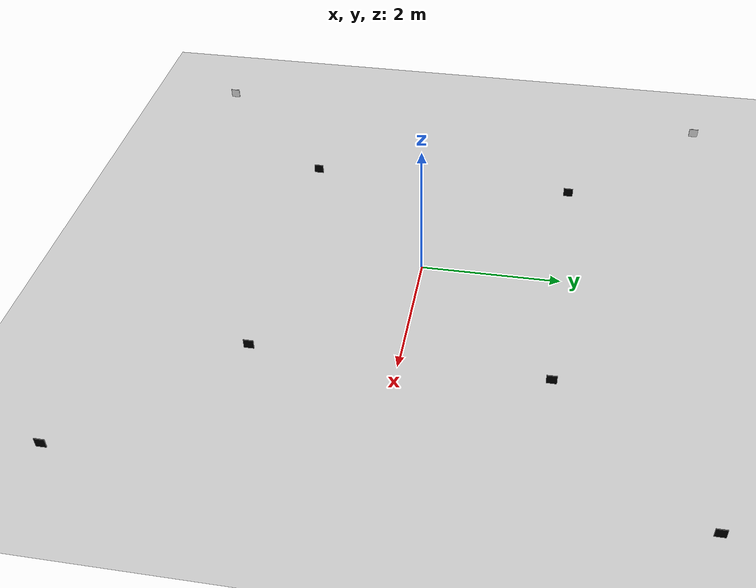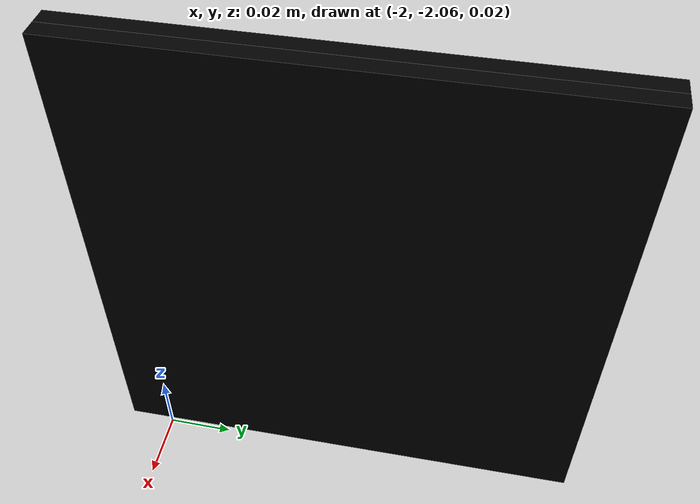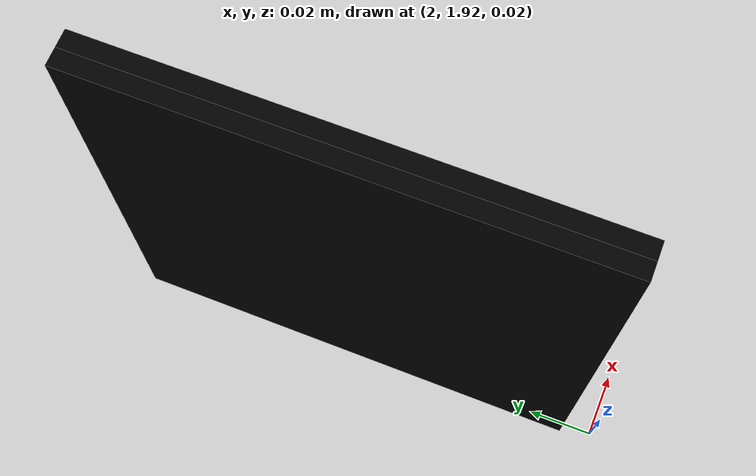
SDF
<sdf version="1.6">
 <world name="default">
  <light name="sun" type="directional">
   <pose>0 0 10 0 -0 0</pose>
   <diffuse>0.8 0.8 0.8 1</diffuse>
   <specular>0.2 0.2 0.2 1</specular>
   <attenuation>
    <range>1000</range>
    <constant>0.9</constant>
    <linear>0.01</linear>
    <quadratic>0.001</quadratic>
   </attenuation>
   <direction>-0.5 0.1 -0.9</direction>
  </light>
  <model name="ground_plane">
   <static>1</static>
   <link name="link">
    <collision name="collision">
     <geometry><plane><normal>0 0 1</normal><size>100 100</size></plane></geometry>
     <surface>
      <contact><collide_bitmask>65535</collide_bitmask></contact>
      <friction><ode><mu>100</mu><mu2>50</mu2></ode></friction>
     </surface>
    </collision>
    <visual name="visual">
     <cast_shadows>0</cast_shadows>
     <geometry><plane><normal>0 0 1</normal><size>100 100</size></plane></geometry>
     <material>
      <script><uri>file://media/materials/scripts/gazebo.material</uri><name>Gazebo/Grey</name></script>
     </material>
    </visual>
   </link>
  </model>
  <gravity>0 0 -9.8</gravity>
  <magnetic_field>6e-06 2.3e-05 -4.2e-05</magnetic_field>
  <atmosphere type="adiabatic"/>
  <physics name="default_physics" default="0" type="ode">
   <max_step_size>0.001</max_step_size>
   <real_time_factor>1</real_time_factor>
   <real_time_update_rate>1000</real_time_update_rate>
  </physics>
  <scene><ambient>0.4 0.4 0.4 1</ambient><background>0.7 0.7 0.7 1</background><shadows>1</shadows></scene>
  <audio><device>default</device></audio>
  <spherical_coordinates>
   <surface_model>EARTH_WGS84</surface_model>
   <latitude_deg>0</latitude_deg>
   <longitude_deg>0</longitude_deg>
   <elevation>0</elevation>
   <heading_deg>0</heading_deg>
  </spherical_coordinates>
  <model name="aruco_plain_0">
   <link name="robot_link">
    <inertial>
     <mass>1</mass>
     <inertia><ixx>1</ixx><ixy>0</ixy><ixz>0</ixz><iyy>1</iyy><iyz>0</iyz><izz>1</izz></inertia>
    </inertial>
    <visual name="front_visual">
     <pose>0 0 0.0025 0 -0 0</pose>
     <geometry><box><size>0.14 0.14 0.005</size></box></geometry>
     <material>
      <lighting>1</lighting>
      <script>
       <uri>model://aruco_plain_0/materials/scripts</uri>
       <uri>model://aruco_plain_0/materials/textures</uri>
       <name>Aruco/Id0</name>
      </script>
      <shader type="vertex"><normal_map>__default__</normal_map></shader>
      <ambient>0 0 0 1</ambient>
      <diffuse>0 0 0 1</diffuse>
      <specular>0 0 0 0</specular>
      <emissive>1 1 1 1</emissive>
     </material>
    </visual>
    <visual name="rear_visual">
     <pose>0 0 -0.0025 0 -0 0</pose>
     <geometry><box><size>0.14 0.14 0.005</size></box></geometry>
     <material>
      <shader type="vertex"><normal_map>__default__</normal_map></shader>
      <script><name>ModelPreview_1::robot_link::rear_visual_MATERIAL_</name><uri>__default__</uri></script>
      <ambient>0 0 0 1</ambient>
      <diffuse>0 0 0 1</diffuse>
      <specular>0 0 0 1</specular>
      <emissive>0 0 0 1</emissive>
     </material>
    </visual>
   </link>
   <static>1</static>
   <pose>2 2 0.1 0 -1.57 0</pose>
  </model>
  <model name="aruco_plain_1">
   <link name="robot_link">
    <inertial>
     <mass>1</mass>
     <inertia><ixx>1</ixx><ixy>0</ixy><ixz>0</ixz><iyy>1</iyy><iyz>0</iyz><izz>1</izz></inertia>
    </inertial>
    <visual name="front_visual">
     <pose>0 0 0.0025 0 -0 0</pose>
     <geometry><box><size>0.14 0.14 0.005</size></box></geometry>
     <material>
      <lighting>1</lighting>
      <script>
       <uri>model://aruco_plain_1/materials/scripts</uri>
       <uri>model://aruco_plain_1/materials/textures</uri>
       <name>Aruco/Id1</name>
      </script>
      <shader type="vertex"><normal_map>__default__</normal_map></shader>
      <ambient>0 0 0 1</ambient>
      <diffuse>0 0 0 1</diffuse>
      <specular>0 0 0 0</specular>
      <emissive>1 1 1 1</emissive>
     </material>
    </visual>
    <visual name="rear_visual">
     <pose>0 0 -0.0025 0 -0 0</pose>
     <geometry><box><size>0.14 0.14 0.005</size></box></geometry>
     <material>
      <shader type="vertex"><normal_map>__default__</normal_map></shader>
      <script><name>ModelPreview_1::robot_link::rear_visual_MATERIAL_</name><uri>__default__</uri></script>
      <ambient>0 0 0 1</ambient>
      <diffuse>0 0 0 1</diffuse>
      <specular>0 0 0 1</specular>
      <emissive>0 0 0 1</emissive>
     </material>
    </visual>
   </link>
   <static>1</static>
   <pose>2 -2 0.1 0 -1.57 0</pose>
  </model>
  <model name="aruco_plain_2">
   <link name="robot_link">
    <inertial>
     <mass>1</mass>
     <inertia><ixx>1</ixx><ixy>0</ixy><ixz>0</ixz><iyy>1</iyy><iyz>0</iyz><izz>1</izz></inertia>
    </inertial>
    <visual name="front_visual">
     <pose>0 0 0.0025 0 -0 0</pose>
     <geometry><box><size>0.14 0.14 0.005</size></box></geometry>
     <material>
      <lighting>1</lighting>
      <script>
       <uri>model://aruco_plain_2/materials/scripts</uri>
       <uri>model://aruco_plain_2/materials/textures</uri>
       <name>Aruco/Id2</name>
      </script>
      <shader type="vertex"><normal_map>__default__</normal_map></shader>
      <ambient>0 0 0 1</ambient>
      <diffuse>0 0 0 1</diffuse>
      <specular>0 0 0 0</specular>
      <emissive>1 1 1 1</emissive>
     </material>
    </visual>
    <visual name="rear_visual">
     <pose>0 0 -0.0025 0 -0 0</pose>
     <geometry><box><size>0.14 0.14 0.005</size></box></geometry>
     <material>
      <shader type="vertex"><normal_map>__default__</normal_map></shader>
      <script><name>ModelPreview_1::robot_link::rear_visual_MATERIAL_</name><uri>__default__</uri></script>
      <ambient>0 0 0 1</ambient>
      <diffuse>0 0 0 1</diffuse>
      <specular>0 0 0 1</specular>
      <emissive>0 0 0 1</emissive>
     </material>
    </visual>
   </link>
   <static>1</static>
   <pose>-2 -2 0.1 0 -1.57 -3.14159</pose>
  </model>
  <model name="aruco_plain_3">
   <link name="robot_link">
    <inertial>
     <mass>1</mass>
     <inertia><ixx>1</ixx><ixy>0</ixy><ixz>0</ixz><iyy>1</iyy><iyz>0</iyz><izz>1</izz></inertia>
    </inertial>
    <visual name="front_visual">
     <pose>0 0 0.0025 0 -0 0</pose>
     <geometry><box><size>0.14 0.14 0.005</size></box></geometry>
     <material>
      <lighting>1</lighting>
      <script>
       <uri>model://aruco_plain_3/materials/scripts</uri>
       <uri>model://aruco_plain_3/materials/textures</uri>
       <name>Aruco/Id3</name>
      </script>
      <shader type="vertex"><normal_map>__default__</normal_map></shader>
      <ambient>0 0 0 1</ambient>
      <diffuse>0 0 0 1</diffuse>
      <specular>0 0 0 0</specular>
      <emissive>1 1 1 1</emissive>
     </material>
    </visual>
    <visual name="rear_visual">
     <pose>0 0 -0.0025 0 -0 0</pose>
     <geometry><box><size>0.14 0.14 0.005</size></box></geometry>
     <material>
      <shader type="vertex"><normal_map>__default__</normal_map></shader>
      <script><name>ModelPreview_1::robot_link::rear_visual_MATERIAL_</name><uri>__default__</uri></script>
      <ambient>0 0 0 1</ambient>
      <diffuse>0 0 0 1</diffuse>
      <specular>0 0 0 1</specular>
      <emissive>0 0 0 1</emissive>
     </material>
    </visual>
   </link>
   <static>1</static>
   <pose>-2 2 0.1 0 -1.57 -3.14159</pose>
  </model>
  <model name="aruco_plain_4">
   <link name="robot_link">
    <inertial>
     <mass>1</mass>
     <inertia><ixx>1</ixx><ixy>0</ixy><ixz>0</ixz><iyy>1</iyy><iyz>0</iyz><izz>1</izz></inertia>
    </inertial>
    <visual name="front_visual">
     <pose>0 0 0.0025 0 -0 0</pose>
     <geometry><box><size>0.14 0.14 0.005</size></box></geometry>
     <material>
      <lighting>1</lighting>
      <script>
       <uri>model://aruco_plain_4/materials/scripts</uri>
       <uri>model://aruco_plain_4/materials/textures</uri>
       <name>Aruco/Id4</name>
      </script>
      <shader type="vertex"><normal_map>__default__</normal_map></shader>
      <ambient>0 0 0 1</ambient>
      <diffuse>0 0 0 1</diffuse>
      <specular>0 0 0 0</specular>
      <emissive>1 1 1 1</emissive>
     </material>
    </visual>
    <visual name="rear_visual">
     <pose>0 0 -0.0025 0 -0 0</pose>
     <geometry><box><size>0.14 0.14 0.005</size></box></geometry>
     <material>
      <shader type="vertex"><normal_map>__default__</normal_map></shader>
      <script><name>ModelPreview_1::robot_link::rear_visual_MATERIAL_</name><uri>__default__</uri></script>
      <ambient>0 0 0 1</ambient>
      <diffuse>0 0 0 1</diffuse>
      <specular>0 0 0 1</specular>
      <emissive>0 0 0 1</emissive>
     </material>
    </visual>
   </link>
   <static>1</static>
   <pose>4 4 0.1 0 -1.57 0</pose>
  </model>
  <model name="aruco_plain_5">
   <link name="robot_link">
    <inertial>
     <mass>1</mass>
     <inertia><ixx>1</ixx><ixy>0</ixy><ixz>0</ixz><iyy>1</iyy><iyz>0</iyz><izz>1</izz></inertia>
    </inertial>
    <visual name="front_visual">
     <pose>0 0 0.0025 0 -0 0</pose>
     <geometry><box><size>0.14 0.14 0.005</size></box></geometry>
     <material>
      <lighting>1</lighting>
      <script>
       <uri>model://aruco_plain_5/materials/scripts</uri>
       <uri>model://aruco_plain_5/materials/textures</uri>
       <name>Aruco/Id5</name>
      </script>
      <shader type="vertex"><normal_map>__default__</normal_map></shader>
      <ambient>0 0 0 1</ambient>
      <diffuse>0 0 0 1</diffuse>
      <specular>0 0 0 0</specular>
      <emissive>1 1 1 1</emissive>
     </material>
    </visual>
    <visual name="rear_visual">
     <pose>0 0 -0.0025 0 -0 0</pose>
     <geometry><box><size>0.14 0.14 0.005</size></box></geometry>
     <material>
      <shader type="vertex"><normal_map>__default__</normal_map></shader>
      <script><name>ModelPreview_1::robot_link::rear_visual_MATERIAL_</name><uri>__default__</uri></script>
      <ambient>0 0 0 1</ambient>
      <diffuse>0 0 0 1</diffuse>
      <specular>0 0 0 1</specular>
      <emissive>0 0 0 1</emissive>
     </material>
    </visual>
   </link>
   <static>1</static>
   <pose>4 -4 0.1 0 -1.57 0</pose>
  </model>
  <model name="aruco_plain_6">
   <link name="robot_link">
    <inertial>
     <mass>1</mass>
     <inertia><ixx>1</ixx><ixy>0</ixy><ixz>0</ixz><iyy>1</iyy><iyz>0</iyz><izz>1</izz></inertia>
    </inertial>
    <visual name="front_visual">
     <pose>0 0 0.0025 0 -0 0</pose>
     <geometry><box><size>0.14 0.14 0.005</size></box></geometry>
     <material>
      <script>
       <uri>model://aruco_plain_6/materials/scripts</uri>
       <uri>model://aruco_plain_6/materials/textures</uri>
       <name>Aruco/Id6</name>
      </script>
      <shader type="vertex"><normal_map>__default__</normal_map></shader>
      <ambient>1 1 1 1</ambient>
      <diffuse>1 1 1 1</diffuse>
      <specular>0 0 0 1</specular>
      <emissive>0 0 0 1</emissive>
     </material>
    </visual>
    <visual name="rear_visual">
     <pose>0 0 -0.0025 0 -0 0</pose>
     <geometry><box><size>0.14 0.14 0.005</size></box></geometry>
     <material>
      <shader type="vertex"><normal_map>__default__</normal_map></shader>
      <script><name>ModelPreview_1::robot_link::rear_visual_MATERIAL_</name><uri>__default__</uri></script>
      <ambient>0 0 0 1</ambient>
      <diffuse>0 0 0 1</diffuse>
      <specular>0 0 0 1</specular>
      <emissive>0 0 0 1</emissive>
     </material>
    </visual>
   </link>
   <static>1</static>
   <pose>-4 -4 0.1 0 -1.57 -3.14159</pose>
  </model>
  <model name="aruco_plain_7">
   <link name="robot_link">
    <inertial>
     <mass>1</mass>
     <inertia><ixx>1</ixx><ixy>0</ixy><ixz>0</ixz><iyy>1</iyy><iyz>0</iyz><izz>1</izz></inertia>
    </inertial>
    <visual name="front_visual">
     <pose>0 0 0.0025 0 -0 0</pose>
     <geometry><box><size>0.14 0.14 0.005</size></box></geometry>
     <material>
      <script>
       <uri>model://aruco_plain_7/materials/scripts</uri>
       <uri>model://aruco_plain_7/materials/textures</uri>
       <name>Aruco/Id7</name>
      </script>
      <shader type="vertex"><normal_map>__default__</normal_map></shader>
      <ambient>1 1 1 1</ambient>
      <diffuse>1 1 1 1</diffuse>
      <specular>0 0 0 1</specular>
      <emissive>0 0 0 1</emissive>
     </material>
    </visual>
    <visual name="rear_visual">
     <pose>0 0 -0.0025 0 -0 0</pose>
     <geometry><box><size>0.14 0.14 0.005</size></box></geometry>
     <material>
      <shader type="vertex"><normal_map>__default__</normal_map></shader>
      <script><name>ModelPreview_1::robot_link::rear_visual_MATERIAL_</name><uri>__default__</uri></script>
      <ambient>0 0 0 1</ambient>
      <diffuse>0 0 0 1</diffuse>
      <specular>0 0 0 1</specular>
      <emissive>0 0 0 1</emissive>
     </material>
    </visual>
   </link>
   <static>1</static>
   <pose>-4 4 0.1 0 -1.57 -3.14159</pose>
  </model>
 </world>
</sdf>
